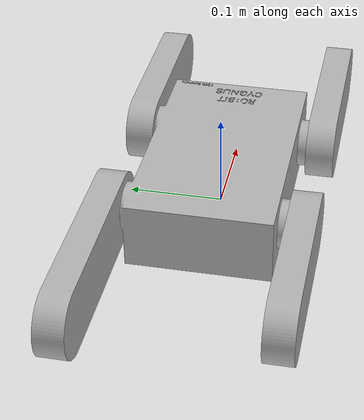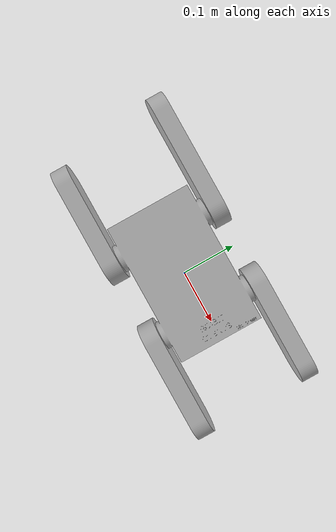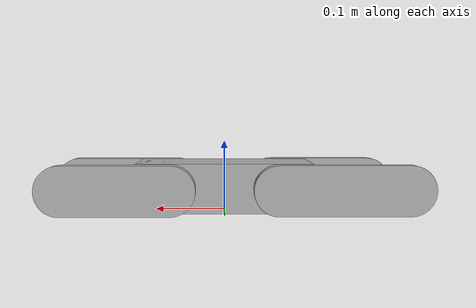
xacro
<?xml version="1.0" ?>
<robot name="cygnus" xmlns:xacro="http://www.ros.org/wiki/xacro">

<xacro:include filename="$(find cygnus_description)/urdf/materials.xacro" />
<xacro:include filename="$(find cygnus_description)/urdf/cygnus.trans" />
<xacro:include filename="$(find cygnus_description)/urdf/cygnus.gazebo" />
<link name="base_link">
  <inertial>
    <origin xyz="-3.381256321980912e-05 -2.4978577981486274e-06 0.034989012896369985" rpy="0 0 0"/>
    <mass value="7.297199838788111"/>
    <inertia ixx="0.017571" iyy="0.041038" izz="0.052761" ixy="2e-06" iyz="1e-06" ixz="8e-06"/>
  </inertial>
  <visual>
    <origin xyz="0 0 0" rpy="0 0 0"/>
    <geometry>
      <mesh filename="package://cygnus_description/meshes/base_link.stl" scale="0.001 0.001 0.001"/>
    </geometry>
    <material name="silver"/>
  </visual>
  <collision>
    <origin xyz="0 0 0" rpy="0 0 0"/>
    <geometry>
      <mesh filename="package://cygnus_description/meshes/base_link.stl" scale="0.001 0.001 0.001"/>
    </geometry>
  </collision>
</link>

<link name="flipper_front_right_1">
  <inertial>
    <origin xyz="0.075 -0.015 0.0" rpy="0 0 0"/>
    <mass value="1.1622245310524473"/>
    <inertia ixx="0.00053" iyy="0.004581" izz="0.004225" ixy="0.0" iyz="-0.0" ixz="0.0"/>
  </inertial>
  <visual>
    <origin xyz="-0.075 0.085 -0.035" rpy="0 0 0"/>
    <geometry>
      <mesh filename="package://cygnus_description/meshes/flipper_front_right_1.stl" scale="0.001 0.001 0.001"/>
    </geometry>
    <material name="silver"/>
  </visual>
  <collision>
    <origin xyz="-0.075 0.085 -0.035" rpy="0 0 0"/>
    <geometry>
      <mesh filename="package://cygnus_description/meshes/flipper_front_right_1.stl" scale="0.001 0.001 0.001"/>
    </geometry>
  </collision>
</link>

<link name="flipper_front_left_1">
  <inertial>
    <origin xyz="0.07500000000000002 0.015 -6.938893903907228e-18" rpy="0 0 0"/>
    <mass value="1.1622245310524475"/>
    <inertia ixx="0.00053" iyy="0.004581" izz="0.004225" ixy="0.0" iyz="0.0" ixz="0.0"/>
  </inertial>
  <visual>
    <origin xyz="-0.075 -0.085 -0.035" rpy="0 0 0"/>
    <geometry>
      <mesh filename="package://cygnus_description/meshes/flipper_front_left_1.stl" scale="0.001 0.001 0.001"/>
    </geometry>
    <material name="silver"/>
  </visual>
  <collision>
    <origin xyz="-0.075 -0.085 -0.035" rpy="0 0 0"/>
    <geometry>
      <mesh filename="package://cygnus_description/meshes/flipper_front_left_1.stl" scale="0.001 0.001 0.001"/>
    </geometry>
  </collision>
</link>

<link name="flipper_back_right_1">
  <inertial>
    <origin xyz="-0.07500000000000005 -0.015 -6.938893903907228e-18" rpy="0 0 0"/>
    <mass value="1.1622245310524477"/>
    <inertia ixx="0.00053" iyy="0.004581" izz="0.004225" ixy="0.0" iyz="0.0" ixz="-0.0"/>
  </inertial>
  <visual>
    <origin xyz="0.075 0.085 -0.035" rpy="0 0 0"/>
    <geometry>
      <mesh filename="package://cygnus_description/meshes/flipper_back_right_1.stl" scale="0.001 0.001 0.001"/>
    </geometry>
    <material name="silver"/>
  </visual>
  <collision>
    <origin xyz="0.075 0.085 -0.035" rpy="0 0 0"/>
    <geometry>
      <mesh filename="package://cygnus_description/meshes/flipper_back_right_1.stl" scale="0.001 0.001 0.001"/>
    </geometry>
  </collision>
</link>

<link name="flipper_back_left_1">
  <inertial>
    <origin xyz="-0.09000000000000001 0.015 0.0" rpy="0 0 0"/>
    <mass value="1.3323245310524472"/>
    <inertia ixx="0.000612" iyy="0.006722" izz="0.006309" ixy="0.0" iyz="0.0" ixz="0.0"/>
  </inertial>
  <visual>
    <origin xyz="0.075 -0.085 -0.035" rpy="0 0 0"/>
    <geometry>
      <mesh filename="package://cygnus_description/meshes/flipper_back_left_1.stl" scale="0.001 0.001 0.001"/>
    </geometry>
    <material name="silver"/>
  </visual>
  <collision>
    <origin xyz="0.075 -0.085 -0.035" rpy="0 0 0"/>
    <geometry>
      <mesh filename="package://cygnus_description/meshes/flipper_back_left_1.stl" scale="0.001 0.001 0.001"/>
    </geometry>
  </collision>
</link>

<joint name="Joint_Flipper_Front_Right" type="continuous">
  <origin xyz="0.075 -0.085 0.035" rpy="0 0 0"/>
  <parent link="base_link"/>
  <child link="flipper_front_right_1"/>
  <axis xyz="0.0 -1.0 0.0"/>
</joint>

<joint name="Joint_Flipper_Front_Left" type="continuous">
  <origin xyz="0.075 0.085 0.035" rpy="0 0 0"/>
  <parent link="base_link"/>
  <child link="flipper_front_left_1"/>
  <axis xyz="0.0 1.0 0.0"/>
</joint>

<joint name="Joint_Flipper_Back_Right" type="continuous">
  <origin xyz="-0.075 -0.085 0.035" rpy="0 0 0"/>
  <parent link="base_link"/>
  <child link="flipper_back_right_1"/>
  <axis xyz="0.0 -1.0 0.0"/>
</joint>

<joint name="Joint_Flipper_Back_Left" type="continuous">
  <origin xyz="-0.075 0.085 0.035" rpy="0 0 0"/>
  <parent link="base_link"/>
  <child link="flipper_back_left_1"/>
  <axis xyz="0.0 1.0 0.0"/>
</joint>

</robot>

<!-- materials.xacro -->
<robot name="cygnus" xmlns:xacro="http://www.ros.org/wiki/xacro" >

<material name="silver">
  <color rgba="0.700 0.700 0.700 1.000"/>
</material>

</robot>

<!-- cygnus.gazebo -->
<robot name="cygnus" xmlns:xacro="http://www.ros.org/wiki/xacro" >

<xacro:property name="body_color" value="Gazebo/Silver" />

<gazebo>
  <plugin name="control" filename="libgazebo_ros_control.so"/>
</gazebo>
<gazebo reference="base_link">
  <material>${body_color}</material>
  <mu1>0.2</mu1>
  <mu2>0.2</mu2>
  <selfCollide>true</selfCollide>
  <gravity>true</gravity>
</gazebo>

<gazebo reference="flipper_front_right_1">
  <material>${body_color}</material>
  <mu1>0.2</mu1>
  <mu2>0.2</mu2>
  <selfCollide>true</selfCollide>
</gazebo>

<gazebo reference="flipper_front_left_1">
  <material>${body_color}</material>
  <mu1>0.2</mu1>
  <mu2>0.2</mu2>
  <selfCollide>true</selfCollide>
</gazebo>

<gazebo reference="flipper_back_right_1">
  <material>${body_color}</material>
  <mu1>0.2</mu1>
  <mu2>0.2</mu2>
  <selfCollide>true</selfCollide>
</gazebo>

<gazebo reference="flipper_back_left_1">
  <material>${body_color}</material>
  <mu1>0.2</mu1>
  <mu2>0.2</mu2>
  <selfCollide>true</selfCollide>
</gazebo>

</robot>
